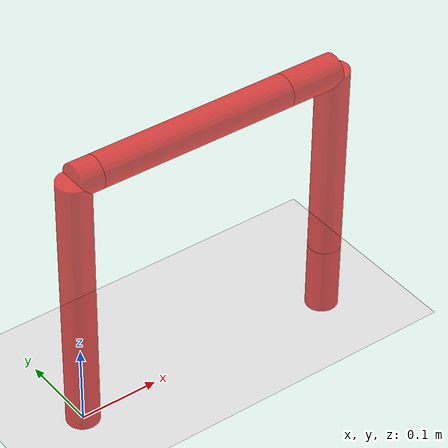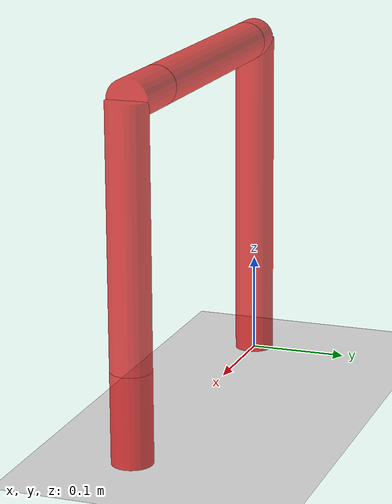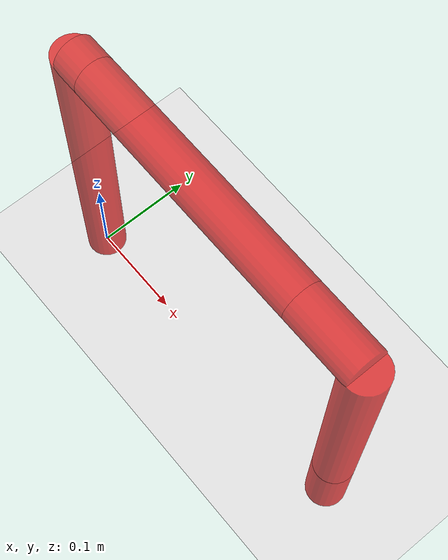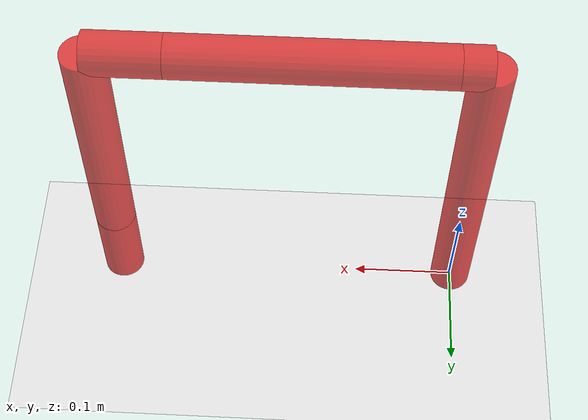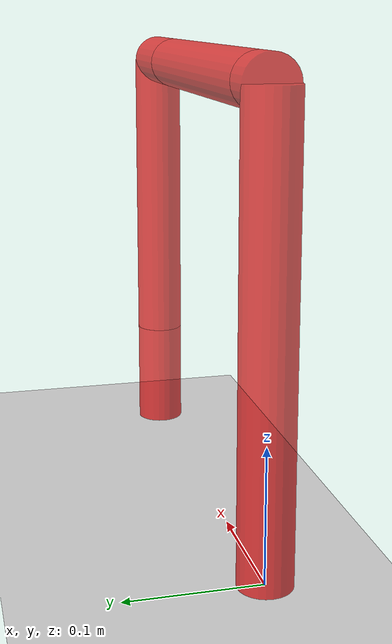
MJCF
<mujoco>
<option gravity="0 0 0"/>
	<worldbody>
    <light diffuse=".5 .5 .5" pos="0 0 3" dir="0 0 -1"/>
	<geom type="plane" size="2.5 2.5 0.1" rgba=".9 .9 .9 1" pos="0 0 0"/>
		<body name="body1" pos="0.0275 0 0.339" xyaxes="1 0 0 0 0 1">
		<geom type="cylinder" size=".02 0" fromto="-0.0275 0 0 -0.0275 -0.339 0" rgba="0.9 0 0 0.7"/>
		<geom type="cylinder" size=".02 0" fromto="-0.0275 0 0 0 0 0" rgba="0.9 0 0 0.7"/>
		<joint name="joint1" type="hinge" axis="0 1 0" pos="-0.0275 -0.339 0"/>
			<body name="body2" pos="0.250 0 0" xyaxes="1 0 0 0 1 0">
			<geom type="cylinder" size=".02 0" fromto="-0.250 0 0 0 0 0" rgba="0.9 0 0 0.7"/>
			<joint name="joint2" type="hinge" axis="0 0 1" pos="-0.250 0 0"/>
				<body name="body3" pos="0.070 0 0" xyaxes="1 0 0 0 0 1">
				<geom type="cylinder" size=".02 0" fromto="-0.070 0 0 0 0 0" rgba="0.9 0 0 0.7"/>
				<joint name="joint3" type="hinge" axis="0 1 0" pos="-0.070 0 0"/>
					<body name="body4" pos="0 0 0.250" xyaxes="1 0 0 0 0 -1">
					<geom type="cylinder" size=".02 0" fromto="0 0.250 0 0 0 0" rgba="0.9 0 0 0.7"/>
					<joint name="joint4" type="hinge" axis="0 -1 0" pos="0 0.250 0"/>
						<body name="body5" pos="0 0 0" xyaxes="1 0 0 0 0 1">
						<joint name="joint5" type="hinge" axis="0 1 0" pos="0 0 0"/>
						<inertial mass="1" pos="0 0 0" fullinertia="0.1 0.1 0.1 0 0 0"/>
							<body name="body6" pos="0 0 0.095" xyaxes="1 0 0 0 1 0">
							<geom type="cylinder" size=".02 0" fromto="0 0 0 0 0 -0.095" rgba="0.9 0 0 0.7"/>
							<joint name="joint6" type="hinge" axis="0 0 1" pos="0 0 -0.095"/>
							<site name="body6sensor" pos="0 0 0" rgba="1 0 0 1" size="0.0005 0.0005 0.0005" type="sphere"/>
							</body>
						</body>
					</body>
				</body>
			</body>
		</body>
	</worldbody>
	<sensor>
		<framelinvel name="spatial6vel" objtype="site" objname="body6sensor"/>
		<frameangvel name="spatial6ang" objtype="site" objname="body6sensor"/>
	</sensor>
	<keyframe>
	</keyframe>
</mujoco>
